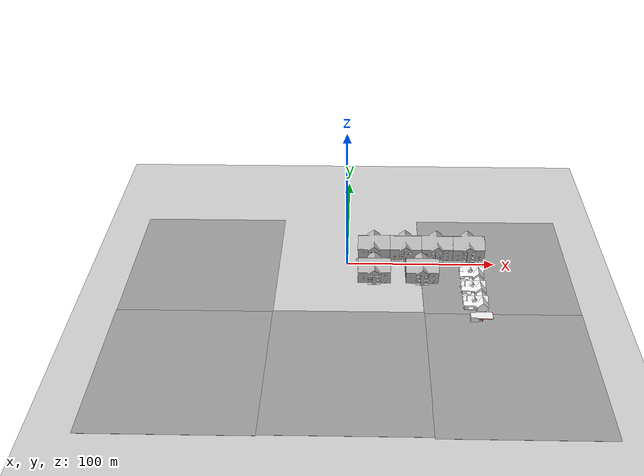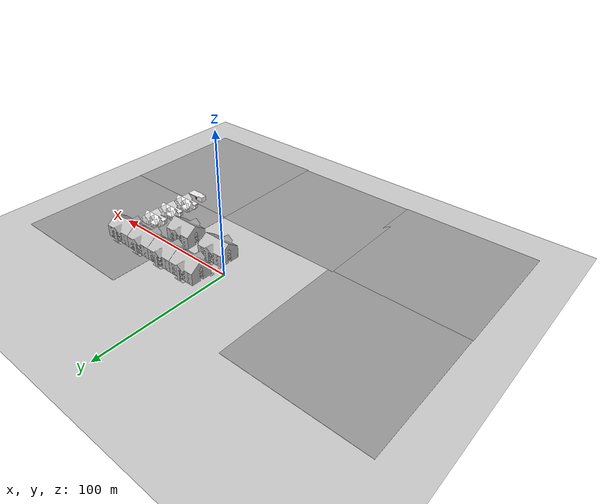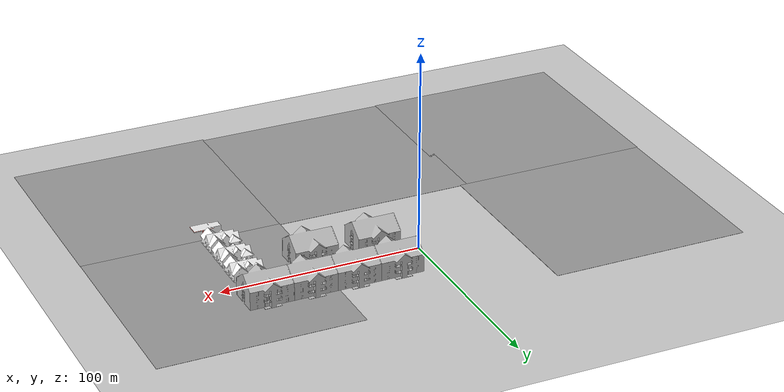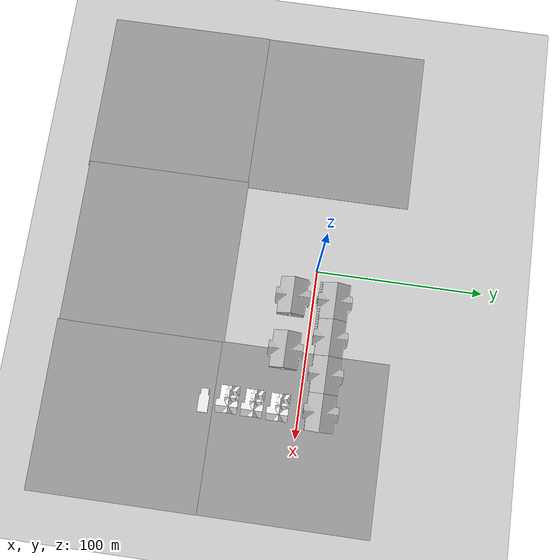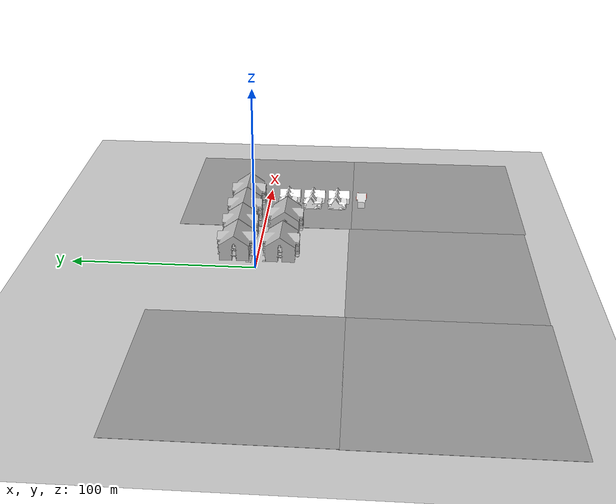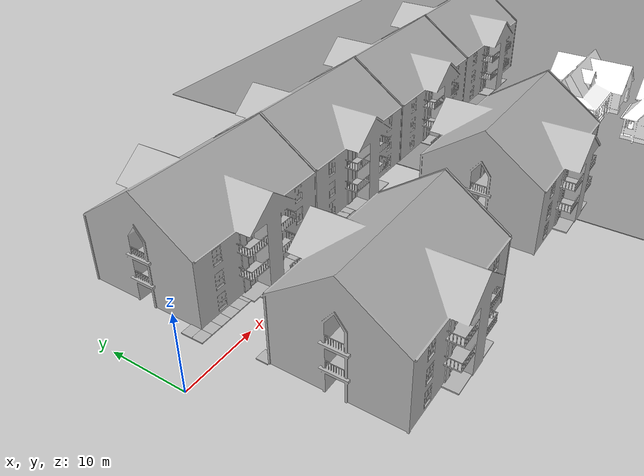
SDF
<sdf version="1.6">
 <world name="default">
  <model name="ground_plane">
   <static>1</static>
   <link name="link">
    <collision name="collision">
     <geometry><plane><normal>0 0 1</normal><size>100 100</size></plane></geometry>
     <surface><friction><ode><mu>100</mu><mu2>50</mu2></ode></friction></surface>
    </collision>
    <visual name="visual">
     <cast_shadows>0</cast_shadows>
     <geometry><plane><normal>0 0 1</normal><size>100 100</size></plane></geometry>
     <material>
      <script><uri>file://media/materials/scripts/gazebo.material</uri><name>Gazebo/Grey</name></script>
     </material>
    </visual>
   </link>
  </model>
  <light name="sun" type="directional">
   <pose>0 0 10 0 -0 0</pose>
   <diffuse>0.8 0.8 0.8 1</diffuse>
   <specular>0.2 0.2 0.2 1</specular>
   <attenuation>
    <range>1000</range>
    <constant>0.9</constant>
    <linear>0.01</linear>
    <quadratic>0.001</quadratic>
   </attenuation>
   <direction>-0.5 0.1 -0.9</direction>
  </light>
  <model name="gas_station">
   <static>1</static>
   <link name="link">
    <collision name="collision">
     <geometry><mesh><uri>model://gas_station/meshes/gas_station.dae</uri></mesh></geometry>
    </collision>
    <visual name="visual">
     <geometry><mesh><uri>model://gas_station/meshes/gas_station.dae</uri></mesh></geometry>
     <material>
      <script>
       <uri>model://gas_station/materials/scripts</uri>
       <uri>model://gas_station/materials/textures</uri>
       <name>GasStation/Diffuse</name>
      </script>
      <shader type="normal_map_tangent_space"><normal_map>GasStation_Normal.png</normal_map></shader>
     </material>
    </visual>
   </link>
   <pose>84.674 -55.6004 0 0 -0 0</pose>
  </model>
  <gravity>0 0 -9.8</gravity>
  <magnetic_field>6e-06 2.3e-05 -4.2e-05</magnetic_field>
  <atmosphere type="adiabatic"/>
  <physics name="default_physics" default="0" type="ode">
   <max_step_size>0.001</max_step_size>
   <real_time_factor>1</real_time_factor>
   <real_time_update_rate>1000</real_time_update_rate>
  </physics>
  <scene><ambient>0.4 0.4 0.4 1</ambient><background>0.7 0.7 0.7 1</background><shadows>1</shadows></scene>
  <spherical_coordinates>
   <surface_model>EARTH_WGS84</surface_model>
   <latitude_deg>0</latitude_deg>
   <longitude_deg>0</longitude_deg>
   <elevation>0</elevation>
   <heading_deg>0</heading_deg>
  </spherical_coordinates>
  <model name="walkway_metal_straight">
   <static>1</static>
   <link name="link">
    <collision name="collision">
     <pose>0 0.762 0.076075 0 -0 0</pose>
     <geometry><box><size>1.524 1.524 0.15215</size></box></geometry>
    </collision>
    <visual name="visual">
     <geometry>
      <mesh><scale>0.001 0.001 0.001</scale><uri>model://walkway_metal_straight/meshes/mesh.obj</uri></mesh>
     </geometry>
    </visual>
   </link>
   <pose>8.81926 3.79892 0 0 -0 1.57</pose>
  </model>
  <model name="walkway_metal_straight_clone">
   <static>1</static>
   <link name="link">
    <collision name="collision">
     <pose>0 0.762 0.076075 0 -0 0</pose>
     <geometry><box><size>1.524 1.524 0.15215</size></box></geometry>
    </collision>
    <visual name="visual">
     <geometry>
      <mesh><scale>0.001 0.001 0.001</scale><uri>model://walkway_metal_straight/meshes/mesh.obj</uri></mesh>
     </geometry>
    </visual>
   </link>
   <pose>10.3444 3.79552 0 0 -0 1.57</pose>
  </model>
  <model name="walkway_metal_straight_clone_0">
   <static>1</static>
   <link name="link">
    <collision name="collision">
     <pose>0 0.762 0.076075 0 -0 0</pose>
     <geometry><box><size>1.524 1.524 0.15215</size></box></geometry>
    </collision>
    <visual name="visual">
     <geometry>
      <mesh><scale>0.001 0.001 0.001</scale><uri>model://walkway_metal_straight/meshes/mesh.obj</uri></mesh>
     </geometry>
    </visual>
   </link>
   <pose>11.8616 3.78954 0 0 -0 1.57</pose>
  </model>
  <model name="walkway_metal_straight_clone_1">
   <static>1</static>
   <link name="link">
    <collision name="collision">
     <pose>0 0.762 0.076075 0 -0 0</pose>
     <geometry><box><size>1.524 1.524 0.15215</size></box></geometry>
    </collision>
    <visual name="visual">
     <geometry>
      <mesh><scale>0.001 0.001 0.001</scale><uri>model://walkway_metal_straight/meshes/mesh.obj</uri></mesh>
     </geometry>
    </visual>
   </link>
   <pose>13.3918 3.79984 0 0 -0 1.57</pose>
  </model>
  <model name="walkway_metal_straight_clone_2">
   <static>1</static>
   <link name="link">
    <collision name="collision">
     <pose>0 0.762 0.076075 0 -0 0</pose>
     <geometry><box><size>1.524 1.524 0.15215</size></box></geometry>
    </collision>
    <visual name="visual">
     <geometry>
      <mesh><scale>0.001 0.001 0.001</scale><uri>model://walkway_metal_straight/meshes/mesh.obj</uri></mesh>
     </geometry>
    </visual>
   </link>
   <pose>14.9132 3.80936 0 0 -0 1.57</pose>
  </model>
  <model name="walkway_metal_straight_clone_3">
   <static>1</static>
   <link name="link">
    <collision name="collision">
     <pose>0 0.762 0.076075 0 -0 0</pose>
     <geometry><box><size>1.524 1.524 0.15215</size></box></geometry>
    </collision>
    <visual name="visual">
     <geometry>
      <mesh><scale>0.001 0.001 0.001</scale><uri>model://walkway_metal_straight/meshes/mesh.obj</uri></mesh>
     </geometry>
    </visual>
   </link>
   <pose>16.4288 2.75416 0 0 -0 1.57</pose>
  </model>
  <model name="walkway_metal_straight_clone_4">
   <static>1</static>
   <link name="link">
    <collision name="collision">
     <pose>0 0.762 0.076075 0 -0 0</pose>
     <geometry><box><size>1.524 1.524 0.15215</size></box></geometry>
    </collision>
    <visual name="visual">
     <geometry>
      <mesh><scale>0.001 0.001 0.001</scale><uri>model://walkway_metal_straight/meshes/mesh.obj</uri></mesh>
     </geometry>
    </visual>
   </link>
   <pose>17.9248 2.75373 0 0 -0 1.57</pose>
  </model>
  <model name="walkway_metal_straight_clone_5">
   <static>1</static>
   <link name="link">
    <collision name="collision">
     <pose>0 0.762 0.076075 0 -0 0</pose>
     <geometry><box><size>1.524 1.524 0.15215</size></box></geometry>
    </collision>
    <visual name="visual">
     <geometry>
      <mesh><scale>0.001 0.001 0.001</scale><uri>model://walkway_metal_straight/meshes/mesh.obj</uri></mesh>
     </geometry>
    </visual>
   </link>
   <pose>19.4376 2.74622 0 0 -0 1.57</pose>
  </model>
  <model name="walkway_metal_90">
   <static>1</static>
   <link name="link">
    <collision name="collision">
     <pose>0 0.762 0.076075 0 -0 0</pose>
     <geometry><box><size>1.524 1.524 0.15215</size></box></geometry>
    </collision>
    <visual name="visual">
     <geometry>
      <mesh><scale>0.001 0.001 0.001</scale><uri>model://walkway_metal_90/meshes/mesh.obj</uri></mesh>
     </geometry>
    </visual>
   </link>
   <pose>7.30034 3.80398 0 0 -0 1.57</pose>
  </model>
  <model name="walkway_metal_straight_0">
   <static>1</static>
   <link name="link">
    <collision name="collision">
     <pose>0 0.762 0.076075 0 -0 0</pose>
     <geometry><box><size>1.524 1.524 0.15215</size></box></geometry>
    </collision>
    <visual name="visual">
     <geometry>
      <mesh><scale>0.001 0.001 0.001</scale><uri>model://walkway_metal_straight/meshes/mesh.obj</uri></mesh>
     </geometry>
    </visual>
   </link>
   <pose>6.53257 4.49821 0 0 -0 0</pose>
  </model>
  <model name="apartment">
   <static>1</static>
   <link name="link">
    <collision name="collision">
     <geometry><mesh><uri>model://apartment/meshes/apartment.dae</uri></mesh></geometry>
    </collision>
    <visual name="visual">
     <geometry><mesh><uri>model://apartment/meshes/apartment.dae</uri></mesh></geometry>
    </visual>
   </link>
   <pose>18.0994 12.5359 0 0 -0 1.57</pose>
  </model>
  <model name="apartment_clone">
   <static>1</static>
   <link name="link">
    <collision name="collision">
     <geometry><mesh><uri>model://apartment/meshes/apartment.dae</uri></mesh></geometry>
    </collision>
    <visual name="visual">
     <geometry><mesh><uri>model://apartment/meshes/apartment.dae</uri></mesh></geometry>
    </visual>
   </link>
   <pose>39.7528 12.5506 0 0 -0 1.57</pose>
  </model>
  <model name="apartment_clone_clone">
   <static>1</static>
   <link name="link">
    <collision name="collision">
     <geometry><mesh><uri>model://apartment/meshes/apartment.dae</uri></mesh></geometry>
    </collision>
    <visual name="visual">
     <geometry><mesh><uri>model://apartment/meshes/apartment.dae</uri></mesh></geometry>
    </visual>
   </link>
   <pose>61.4061 12.5046 0 0 -0 1.57</pose>
  </model>
  <model name="walkway_metal_straight_clone_0_clone">
   <static>1</static>
   <link name="link">
    <collision name="collision">
     <pose>0 0.762 0.076075 0 -0 0</pose>
     <geometry><box><size>1.524 1.524 0.15215</size></box></geometry>
    </collision>
    <visual name="visual">
     <geometry>
      <mesh><scale>0.001 0.001 0.001</scale><uri>model://walkway_metal_straight/meshes/mesh.obj</uri></mesh>
     </geometry>
    </visual>
   </link>
   <pose>23.8677 3.75929 0 0 -0 1.57</pose>
  </model>
  <model name="walkway_metal_straight_clone_0_clone_0">
   <static>1</static>
   <link name="link">
    <collision name="collision">
     <pose>0 0.762 0.076075 0 -0 0</pose>
     <geometry><box><size>1.524 1.524 0.15215</size></box></geometry>
    </collision>
    <visual name="visual">
     <geometry>
      <mesh><scale>0.001 0.001 0.001</scale><uri>model://walkway_metal_straight/meshes/mesh.obj</uri></mesh>
     </geometry>
    </visual>
   </link>
   <pose>25.3836 3.75592 0 0 -0 1.57</pose>
  </model>
  <model name="walkway_metal_straight_clone_0_clone_1">
   <static>1</static>
   <link name="link">
    <collision name="collision">
     <pose>0 0.762 0.076075 0 -0 0</pose>
     <geometry><box><size>1.524 1.524 0.15215</size></box></geometry>
    </collision>
    <visual name="visual">
     <geometry>
      <mesh><scale>0.001 0.001 0.001</scale><uri>model://walkway_metal_straight/meshes/mesh.obj</uri></mesh>
     </geometry>
    </visual>
   </link>
   <pose>26.8573 3.75552 0 0 -0 1.57</pose>
  </model>
  <model name="walkway_metal_straight_clone_0_clone_2">
   <static>1</static>
   <link name="link">
    <collision name="collision">
     <pose>0 0.762 0.076075 0 -0 0</pose>
     <geometry><box><size>1.524 1.524 0.15215</size></box></geometry>
    </collision>
    <visual name="visual">
     <geometry>
      <mesh><scale>0.001 0.001 0.001</scale><uri>model://walkway_metal_straight/meshes/mesh.obj</uri></mesh>
     </geometry>
    </visual>
   </link>
   <pose>28.3914 3.75812 0 0 -0 1.57</pose>
  </model>
  <model name="walkway_metal_straight_clone_0_clone_3">
   <static>1</static>
   <link name="link">
    <collision name="collision">
     <pose>0 0.762 0.076075 0 -0 0</pose>
     <geometry><box><size>1.524 1.524 0.15215</size></box></geometry>
    </collision>
    <visual name="visual">
     <geometry>
      <mesh><scale>0.001 0.001 0.001</scale><uri>model://walkway_metal_straight/meshes/mesh.obj</uri></mesh>
     </geometry>
    </visual>
   </link>
   <pose>29.8999 3.76761 0 0 -0 1.57</pose>
  </model>
  <model name="walkway_metal_straight_clone_0_clone_4">
   <static>1</static>
   <link name="link">
    <collision name="collision">
     <pose>0 0.762 0.076075 0 -0 0</pose>
     <geometry><box><size>1.524 1.524 0.15215</size></box></geometry>
    </collision>
    <visual name="visual">
     <geometry>
      <mesh><scale>0.001 0.001 0.001</scale><uri>model://walkway_metal_straight/meshes/mesh.obj</uri></mesh>
     </geometry>
    </visual>
   </link>
   <pose>31.4236 3.77599 0 0 -0 1.57</pose>
  </model>
  <model name="walkway_metal_straight_clone_0_clone_5">
   <static>1</static>
   <link name="link">
    <collision name="collision">
     <pose>0 0.762 0.076075 0 -0 0</pose>
     <geometry><box><size>1.524 1.524 0.15215</size></box></geometry>
    </collision>
    <visual name="visual">
     <geometry>
      <mesh><scale>0.001 0.001 0.001</scale><uri>model://walkway_metal_straight/meshes/mesh.obj</uri></mesh>
     </geometry>
    </visual>
   </link>
   <pose>32.9508 3.76838 0 0 -0 1.57</pose>
  </model>
  <model name="walkway_metal_straight_clone_0_clone_6">
   <static>1</static>
   <link name="link">
    <collision name="collision">
     <pose>0 0.762 0.076075 0 -0 0</pose>
     <geometry><box><size>1.524 1.524 0.15215</size></box></geometry>
    </collision>
    <visual name="visual">
     <geometry>
      <mesh><scale>0.001 0.001 0.001</scale><uri>model://walkway_metal_straight/meshes/mesh.obj</uri></mesh>
     </geometry>
    </visual>
   </link>
   <pose>34.4234 3.76644 0 0 -0 1.57</pose>
  </model>
  <model name="walkway_metal_straight_clone_0_clone_7">
   <static>1</static>
   <link name="link">
    <collision name="collision">
     <pose>0 0.762 0.076075 0 -0 0</pose>
     <geometry><box><size>1.524 1.524 0.15215</size></box></geometry>
    </collision>
    <visual name="visual">
     <geometry>
      <mesh><scale>0.001 0.001 0.001</scale><uri>model://walkway_metal_straight/meshes/mesh.obj</uri></mesh>
     </geometry>
    </visual>
   </link>
   <pose>35.7609 3.76016 0 0 -0 1.57</pose>
  </model>
  <model name="apartment_clone_0">
   <static>1</static>
   <link name="link">
    <collision name="collision">
     <geometry><mesh><uri>model://apartment/meshes/apartment.dae</uri></mesh></geometry>
    </collision>
    <visual name="visual">
     <geometry><mesh><uri>model://apartment/meshes/apartment.dae</uri></mesh></geometry>
    </visual>
   </link>
   <pose>18.1217 -12.4956 0 0 -0 1.57</pose>
  </model>
  <model name="walkway_metal_straight_clone_6">
   <static>1</static>
   <link name="link">
    <collision name="collision">
     <pose>0 0.762 0.076075 0 -0 0</pose>
     <geometry><box><size>1.524 1.524 0.15215</size></box></geometry>
    </collision>
    <visual name="visual">
     <geometry>
      <mesh><scale>0.001 0.001 0.001</scale><uri>model://walkway_metal_straight/meshes/mesh.obj</uri></mesh>
     </geometry>
    </visual>
   </link>
   <pose>8.6273 -3.75363 0 0 -0 1.57</pose>
  </model>
  <model name="apartment_clone_0_clone">
   <static>1</static>
   <link name="link">
    <collision name="collision">
     <geometry><mesh><uri>model://apartment/meshes/apartment.dae</uri></mesh></geometry>
    </collision>
    <visual name="visual">
     <geometry><mesh><uri>model://apartment/meshes/apartment.dae</uri></mesh></geometry>
    </visual>
   </link>
   <pose>49.9197 -12.5004 0 0 -0 1.57</pose>
  </model>
  <model name="House 1">
   <static>1</static>
   <link name="link">
    <collision name="collision">
     <geometry><mesh><uri>model://house_1/meshes/house_1.dae</uri><scale>1.5 1.5 1.5</scale></mesh></geometry>
    </collision>
    <visual name="visual">
     <geometry><mesh><uri>model://house_1/meshes/house_1.dae</uri><scale>1.5 1.5 1.5</scale></mesh></geometry>
     <material>
      <script>
       <uri>model://house_1/materials/scripts</uri>
       <uri>model://house_1/materials/textures</uri>
       <name>House_1/Diffuse</name>
      </script>
      <shader type="normal_map_tangent_space"><normal_map>House_1_Normal.png</normal_map></shader>
     </material>
    </visual>
   </link>
   <pose>83.4145 -11.7453 0 0 -0 0</pose>
  </model>
  <model name="apartment_clone_clone_clone">
   <static>1</static>
   <link name="link">
    <collision name="collision">
     <geometry><mesh><uri>model://apartment/meshes/apartment.dae</uri></mesh></geometry>
    </collision>
    <visual name="visual">
     <geometry><mesh><uri>model://apartment/meshes/apartment.dae</uri></mesh></geometry>
    </visual>
   </link>
   <pose>83.034 12.4891 0 0 -0 1.57</pose>
  </model>
  <model name="House 1_clone">
   <static>1</static>
   <link name="link">
    <collision name="collision">
     <geometry><mesh><uri>model://house_1/meshes/house_1.dae</uri><scale>1.5 1.5 1.5</scale></mesh></geometry>
    </collision>
    <visual name="visual">
     <geometry><mesh><uri>model://house_1/meshes/house_1.dae</uri><scale>1.5 1.5 1.5</scale></mesh></geometry>
     <material>
      <script>
       <uri>model://house_1/materials/scripts</uri>
       <uri>model://house_1/materials/textures</uri>
       <name>House_1/Diffuse</name>
      </script>
      <shader type="normal_map_tangent_space"><normal_map>House_1_Normal.png</normal_map></shader>
     </material>
    </visual>
   </link>
   <pose>83.1495 -26.6597 0 0 -0 0</pose>
  </model>
  <model name="House 1_clone_0">
   <static>1</static>
   <link name="link">
    <collision name="collision">
     <geometry><mesh><uri>model://house_1/meshes/house_1.dae</uri><scale>1.5 1.5 1.5</scale></mesh></geometry>
    </collision>
    <visual name="visual">
     <geometry><mesh><uri>model://house_1/meshes/house_1.dae</uri><scale>1.5 1.5 1.5</scale></mesh></geometry>
     <material>
      <script>
       <uri>model://house_1/materials/scripts</uri>
       <uri>model://house_1/materials/textures</uri>
       <name>House_1/Diffuse</name>
      </script>
      <shader type="normal_map_tangent_space"><normal_map>House_1_Normal.png</normal_map></shader>
     </material>
    </visual>
   </link>
   <pose>82.9964 -41.5168 0 0 -0 0</pose>
  </model>
  <model name="ground_plane_0">
   <static>1</static>
   <link name="link">
    <collision name="collision">
     <geometry><plane><normal>0 0 1</normal><size>100 100</size></plane></geometry>
     <surface><friction><ode><mu>100</mu><mu2>50</mu2></ode></friction></surface>
    </collision>
    <visual name="visual">
     <cast_shadows>0</cast_shadows>
     <geometry><plane><normal>0 0 1</normal><size>100 100</size></plane></geometry>
     <material>
      <script><uri>file://media/materials/scripts/gazebo.material</uri><name>Gazebo/Grey</name></script>
     </material>
    </visual>
   </link>
   <pose>-0.037273 -99.0745 0 0 -0 0</pose>
  </model>
  <model name="ground_plane_1">
   <static>1</static>
   <link name="link">
    <collision name="collision">
     <geometry><plane><normal>0 0 1</normal><size>100 100</size></plane></geometry>
     <surface><friction><ode><mu>100</mu><mu2>50</mu2></ode></friction></surface>
    </collision>
    <visual name="visual">
     <cast_shadows>0</cast_shadows>
     <geometry><plane><normal>0 0 1</normal><size>100 100</size></plane></geometry>
     <material>
      <script><uri>file://media/materials/scripts/gazebo.material</uri><name>Gazebo/Grey</name></script>
     </material>
    </visual>
   </link>
   <pose>99.5974 -0.193372 0 0 -0 0</pose>
  </model>
  <model name="ground_plane_2">
   <static>1</static>
   <link name="link">
    <collision name="collision">
     <geometry><plane><normal>0 0 1</normal><size>100 100</size></plane></geometry>
     <surface><friction><ode><mu>100</mu><mu2>50</mu2></ode></friction></surface>
    </collision>
    <visual name="visual">
     <cast_shadows>0</cast_shadows>
     <geometry><plane><normal>0 0 1</normal><size>100 100</size></plane></geometry>
     <material>
      <script><uri>file://media/materials/scripts/gazebo.material</uri><name>Gazebo/Grey</name></script>
     </material>
    </visual>
   </link>
   <pose>99.7181 -100.033 0 0 -0 0</pose>
  </model>
  <model name="ground_plane_3">
   <static>1</static>
   <link name="link">
    <collision name="collision">
     <geometry><plane><normal>0 0 1</normal><size>100 100</size></plane></geometry>
     <surface><friction><ode><mu>100</mu><mu2>50</mu2></ode></friction></surface>
    </collision>
    <visual name="visual">
     <cast_shadows>0</cast_shadows>
     <geometry><plane><normal>0 0 1</normal><size>100 100</size></plane></geometry>
     <material>
      <script><uri>file://media/materials/scripts/gazebo.material</uri><name>Gazebo/Grey</name></script>
     </material>
    </visual>
   </link>
   <pose>-96.4927 0.207294 0 0 -0 0</pose>
  </model>
  <model name="ground_plane_4">
   <static>1</static>
   <link name="link">
    <collision name="collision">
     <geometry><plane><normal>0 0 1</normal><size>100 100</size></plane></geometry>
     <surface><friction><ode><mu>100</mu><mu2>50</mu2></ode></friction></surface>
    </collision>
    <visual name="visual">
     <cast_shadows>0</cast_shadows>
     <geometry><plane><normal>0 0 1</normal><size>100 100</size></plane></geometry>
     <material>
      <script><uri>file://media/materials/scripts/gazebo.material</uri><name>Gazebo/Grey</name></script>
     </material>
    </visual>
   </link>
   <pose>-96.8227 -99.6308 0 0 -0 0</pose>
  </model>
 </world>
</sdf>
